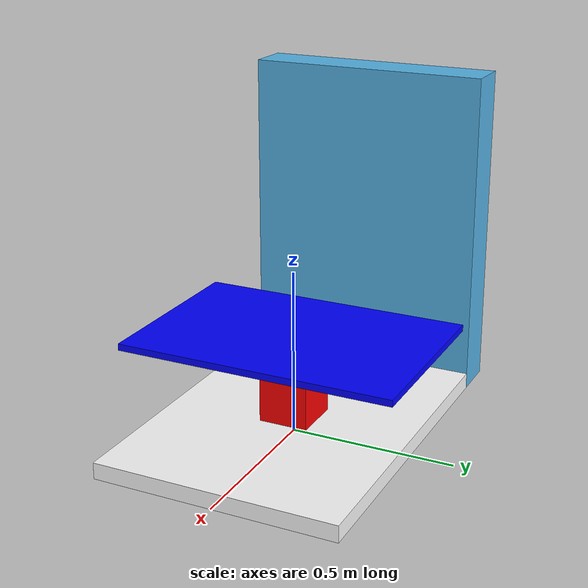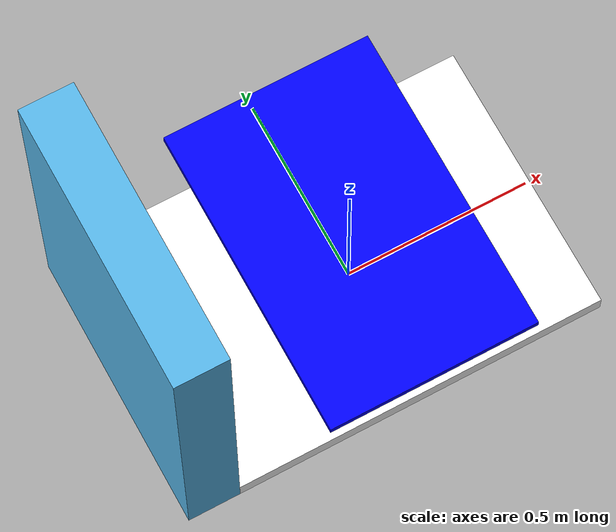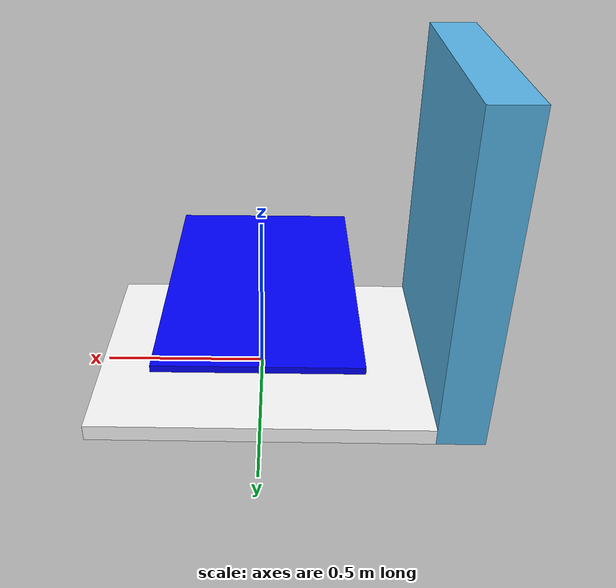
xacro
<?xml version="1.0"?>
<robot xmlns:xacro="http://www.ros.org/wiki/xacro" name="my_robot">
  <link name="base_footprint"/>
  <link name="base_link">
    <visual>
      <geometry>
        <box size="1 0.74 0.05"/>
      </geometry>
      <origin xyz="0 0 0.025" rpy="0 0 0"/>
      <material name="material_name">
        <color rgba="1 1 1 1"/>
      </material>
    </visual>
    <visual>
      <geometry>
        <box size="0.14 0.74 1"/>
      </geometry>
      <origin xyz="-0.57 0 0.5" rpy="0 0 0"/>
    </visual>
  </link>
  <joint name="base_joint" type="fixed">
    <parent link="base_footprint"/>
    <child link="base_link"/>
    <origin xyz="0 0 0" rpy="0 0 0"/>
  </joint>
  <link name="x_link">
    <visual>
      <geometry>
        <box size="0.15 0.15 0.3"/>
      </geometry>
      <origin xyz="0 0 0" rpy="0 0 0"/>
      <material name="x_link">
        <color rgba="1 0 0 1"/>
      </material>
    </visual>
  </link>
  <joint name="joint_x" type="prismatic">
    <parent link="base_link"/>
    <child link="x_link"/>
    <origin xyz="0 0 0.15" rpy="0 0 0"/>
    <limit lower="-0.2" upper="0.2" effort="100" velocity="1"/>
    <axis xyz="1 0 0"/>
  </joint>
  <link name="y_link">
    <visual>
      <geometry>
        <box size="0.56 0.84 0.02"/>
      </geometry>
      <origin xyz="0 0 0" rpy="0 0 0"/>
      <material name="y_link">
        <color rgba="0 0 1 1"/>
      </material>
    </visual>
  </link>
  <joint name="joint_y" type="prismatic">
    <parent link="x_link"/>
    <child link="y_link"/>
    <origin xyz="0 0 0.15" rpy="0 0 0"/>
    <limit lower="-0.2" upper="0.2" effort="100" velocity="1"/>
    <axis xyz="0 1 0"/>
  </joint>
</robot>
